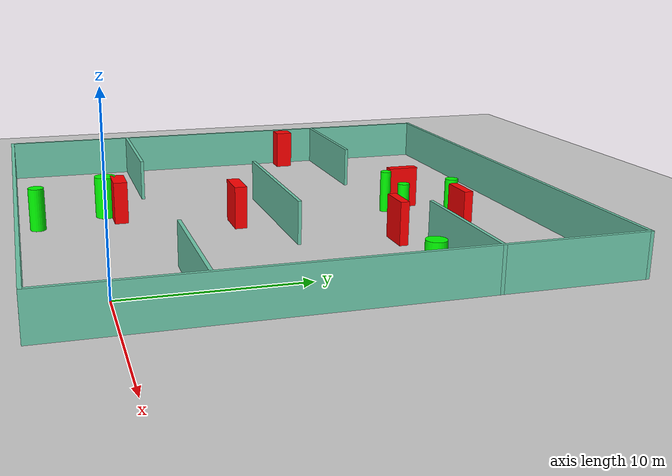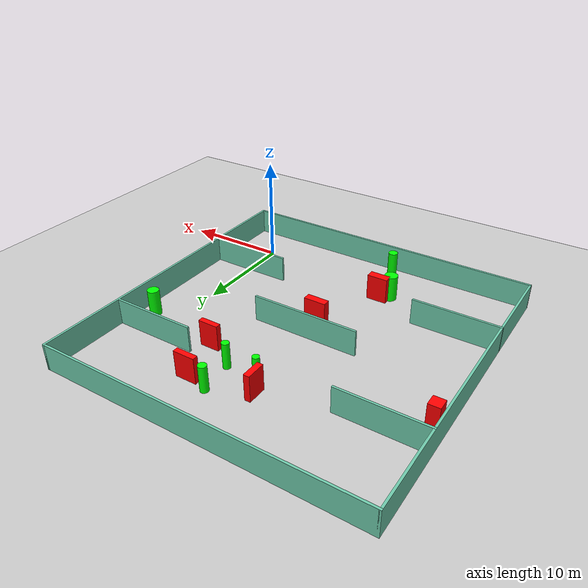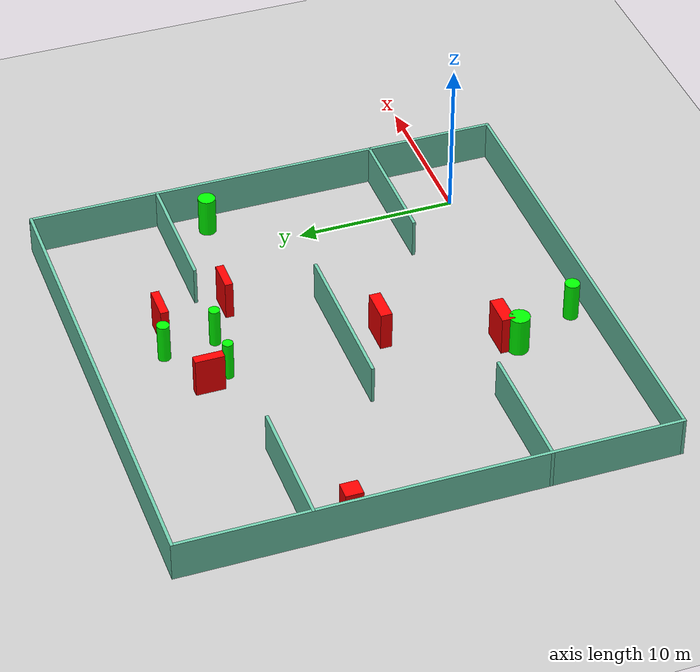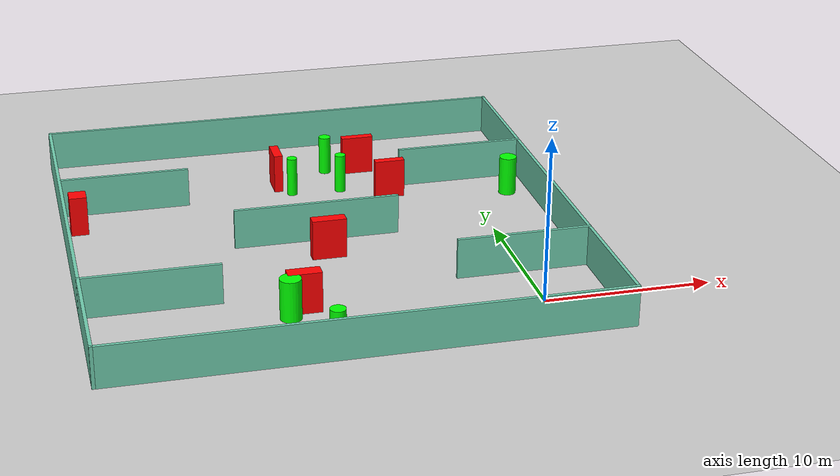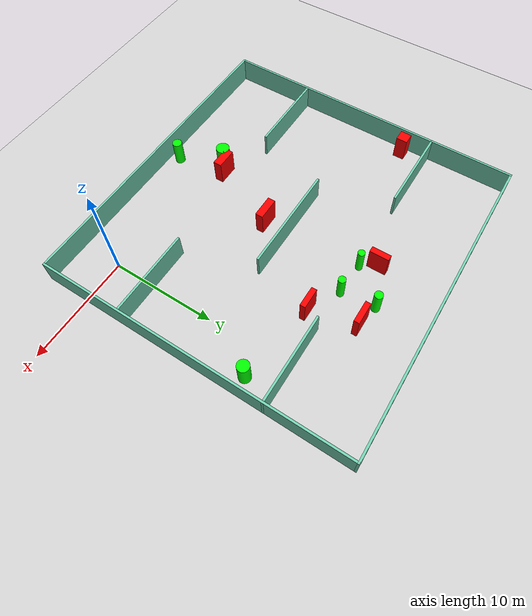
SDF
<sdf version="1.7">
 <world name="default">
  <light name="sun" type="directional">
   <pose>0 0 10 0 -0 0</pose>
   <diffuse>0.8 0.8 0.8 1</diffuse>
   <specular>0.2 0.2 0.2 1</specular>
   <attenuation>
    <range>1000</range>
    <constant>0.9</constant>
    <linear>0.01</linear>
    <quadratic>0.001</quadratic>
   </attenuation>
   <direction>-0.5 0.1 -0.9</direction>
   <spot><inner_angle>0</inner_angle><outer_angle>0</outer_angle><falloff>0</falloff></spot>
  </light>
  <model name="ground_plane">
   <static>1</static>
   <link name="link">
    <collision name="collision">
     <geometry><plane><normal>0 0 1</normal><size>100 100</size></plane></geometry>
     <surface>
      <contact><collide_bitmask>65535</collide_bitmask></contact>
      <friction><ode><mu>100</mu><mu2>50</mu2></ode></friction>
     </surface>
    </collision>
    <visual name="visual">
     <cast_shadows>0</cast_shadows>
     <geometry><plane><normal>0 0 1</normal><size>100 100</size></plane></geometry>
     <material>
      <script><uri>file://media/materials/scripts/gazebo.material</uri><name>Gazebo/Grey</name></script>
     </material>
    </visual>
   </link>
  </model>
  <gravity>0 0 -9.8</gravity>
  <magnetic_field>6e-06 2.3e-05 -4.2e-05</magnetic_field>
  <atmosphere type="adiabatic"/>
  <physics type="ode">
   <max_step_size>0.001</max_step_size>
   <real_time_factor>1</real_time_factor>
   <real_time_update_rate>1000</real_time_update_rate>
  </physics>
  <scene><ambient>0.4 0.4 0.4 1</ambient><background>0.7 0.7 0.7 1</background><shadows>1</shadows></scene>
  <spherical_coordinates>
   <surface_model>EARTH_WGS84</surface_model>
   <latitude_deg>0</latitude_deg>
   <longitude_deg>0</longitude_deg>
   <elevation>0</elevation>
   <heading_deg>0</heading_deg>
  </spherical_coordinates>
  <model name="my_base_walls">
   <link name="Wall_10">
    <collision name="Wall_10_Collision">
     <geometry><box><size>8.2 0.2 2.5</size></box></geometry>
     <pose>0 0 1.25 0 -0 0</pose>
    </collision>
    <visual name="Wall_10_Visual">
     <pose>0 0 1.25 0 -0 0</pose>
     <geometry><box><size>8.2 0.2 2.5</size></box></geometry>
     <material>
      <script><uri>file://media/materials/scripts/gazebo.material</uri><name>Gazebo/Grey</name></script>
      <ambient>0.435294 0.796078 0.67451 1</ambient>
     </material>
     <meta><layer>0</layer></meta>
    </visual>
    <pose>-11 -7 0 0 -0 0</pose>
   </link>
   <link name="Wall_12">
    <collision name="Wall_12_Collision">
     <geometry><box><size>8.2 0.2 2.5</size></box></geometry>
     <pose>0 0 1.25 0 -0 0</pose>
    </collision>
    <visual name="Wall_12_Visual">
     <pose>0 0 1.25 0 -0 0</pose>
     <geometry><box><size>8.2 0.2 2.5</size></box></geometry>
     <material>
      <script><uri>file://media/materials/scripts/gazebo.material</uri><name>Gazebo/Grey</name></script>
      <ambient>0.435294 0.796078 0.67451 1</ambient>
     </material>
     <meta><layer>0</layer></meta>
    </visual>
    <pose>-11 7 0 0 -0 0</pose>
   </link>
   <link name="Wall_14">
    <collision name="Wall_14_Collision">
     <geometry><box><size>8.2 0.2 2.5</size></box></geometry>
     <pose>0 0 1.25 0 -0 0</pose>
    </collision>
    <visual name="Wall_14_Visual">
     <pose>0 0 1.25 0 -0 0</pose>
     <geometry><box><size>8.2 0.2 2.5</size></box></geometry>
     <material>
      <script><uri>file://media/materials/scripts/gazebo.material</uri><name>Gazebo/Grey</name></script>
      <ambient>0.435294 0.796078 0.67451 1</ambient>
     </material>
     <meta><layer>0</layer></meta>
    </visual>
    <pose>11 7 0 0 -0 3.14159</pose>
   </link>
   <link name="Wall_16">
    <collision name="Wall_16_Collision">
     <geometry><box><size>10.2 0.2 2.5</size></box></geometry>
     <pose>0 0 1.25 0 -0 0</pose>
    </collision>
    <visual name="Wall_16_Visual">
     <pose>0 0 1.25 0 -0 0</pose>
     <geometry><box><size>10.2 0.2 2.5</size></box></geometry>
     <material>
      <script><uri>file://media/materials/scripts/gazebo.material</uri><name>Gazebo/Grey</name></script>
      <ambient>0.435294 0.796078 0.67451 1</ambient>
     </material>
     <meta><layer>0</layer></meta>
    </visual>
    <pose>0 0 0 0 -0 3.14159</pose>
   </link>
   <link name="Wall_2">
    <collision name="Wall_2_Collision">
     <geometry><box><size>30.2 0.2 2.5</size></box></geometry>
     <pose>0 0 1.25 0 -0 0</pose>
    </collision>
    <visual name="Wall_2_Visual">
     <pose>0 0 1.25 0 -0 0</pose>
     <geometry><box><size>30.2 0.2 2.5</size></box></geometry>
     <material>
      <script><uri>file://media/materials/scripts/gazebo.material</uri><name>Gazebo/Grey</name></script>
      <ambient>0.435294 0.796078 0.67451 1</ambient>
     </material>
     <meta><layer>0</layer></meta>
    </visual>
    <pose>0 -15 0 0 -0 3.14159</pose>
   </link>
   <link name="Wall_3">
    <collision name="Wall_3_Collision">
     <geometry><box><size>30.2 0.2 2.5</size></box></geometry>
     <pose>0 0 1.25 0 -0 0</pose>
    </collision>
    <visual name="Wall_3_Visual">
     <pose>0 0 1.25 0 -0 0</pose>
     <geometry><box><size>30.2 0.2 2.5</size></box></geometry>
     <material>
      <script><uri>file://media/materials/scripts/gazebo.material</uri><name>Gazebo/Grey</name></script>
      <ambient>0.435294 0.796078 0.67451 1</ambient>
     </material>
     <meta><layer>0</layer></meta>
    </visual>
    <pose>-15 0 0 0 -0 1.5708</pose>
   </link>
   <link name="Wall_4">
    <collision name="Wall_4_Collision">
     <geometry><box><size>30.2 0.2 2.5</size></box></geometry>
     <pose>0 0 1.25 0 -0 0</pose>
    </collision>
    <visual name="Wall_4_Visual">
     <pose>0 0 1.25 0 -0 0</pose>
     <geometry><box><size>30.2 0.2 2.5</size></box></geometry>
     <material>
      <script><uri>file://media/materials/scripts/gazebo.material</uri><name>Gazebo/Grey</name></script>
      <ambient>0.435294 0.796078 0.67451 1</ambient>
     </material>
     <meta><layer>0</layer></meta>
    </visual>
    <pose>0 15 0 0 -0 0</pose>
   </link>
   <link name="Wall_6">
    <collision name="Wall_6_Collision">
     <geometry><box><size>30.2 0.2 2.5</size></box></geometry>
     <pose>0 0 1.25 0 -0 0</pose>
    </collision>
    <visual name="Wall_6_Visual">
     <pose>0 0 1.25 0 -0 0</pose>
     <geometry><box><size>30.2 0.2 2.5</size></box></geometry>
     <material>
      <script><uri>file://media/materials/scripts/gazebo.material</uri><name>Gazebo/Grey</name></script>
      <ambient>0.435294 0.796078 0.67451 1</ambient>
     </material>
     <meta><layer>0</layer></meta>
    </visual>
    <pose>15 0 0 0 -0 1.5708</pose>
   </link>
   <link name="Wall_8">
    <collision name="Wall_8_Collision">
     <geometry><box><size>8.2 0.2 2.5</size></box></geometry>
     <pose>0 0 1.25 0 -0 0</pose>
    </collision>
    <visual name="Wall_8_Visual">
     <pose>0 0 1.25 0 -0 0</pose>
     <geometry><box><size>8.2 0.2 2.5</size></box></geometry>
     <material>
      <script><uri>file://media/materials/scripts/gazebo.material</uri><name>Gazebo/Grey</name></script>
      <ambient>0.435294 0.796078 0.67451 1</ambient>
     </material>
     <meta><layer>0</layer></meta>
    </visual>
    <pose>11 -7 0 0 -0 3.14159</pose>
   </link>
   <static>1</static>
   <pose>-11 11 0 0 -0 0</pose>
  </model>
  <model name="cylinder1">
   <static>1</static>
   <link name="link">
    <inertial>
     <mass>1</mass>
     <inertia><ixx>0.5</ixx><ixy>0</ixy><ixz>0</ixz><iyy>0.5</iyy><iyz>0</iyz><izz>1</izz></inertia>
    </inertial>
    <collision name="collision">
     <geometry><cylinder><radius>0.548670943746616</radius><length>2.5</length></cylinder></geometry>
    </collision>
    <visual name="visual">
     <geometry><cylinder><radius>0.548670943746616</radius><length>2.5</length></cylinder></geometry>
     <material>
      <ambient>0 1 0 1</ambient>
      <diffuse>0 1 0 1</diffuse>
      <specular>0.1 0.1 0.1 1</specular>
      <emissive>0 0 0 0</emissive>
     </material>
    </visual>
   </link>
   <pose>2.482613313827681 15.238384204195306 1.25 0 0 0</pose>
  </model>
  <model name="cylinder2">
   <static>1</static>
   <link name="link">
    <inertial>
     <mass>1</mass>
     <inertia><ixx>0.5</ixx><ixy>0</ixy><ixz>0</ixz><iyy>0.5</iyy><iyz>0</iyz><izz>1</izz></inertia>
    </inertial>
    <collision name="collision">
     <geometry><cylinder><radius>0.3451538124476172</radius><length>2.5</length></cylinder></geometry>
    </collision>
    <visual name="visual">
     <geometry><cylinder><radius>0.3451538124476172</radius><length>2.5</length></cylinder></geometry>
     <material>
      <ambient>0 1 0 1</ambient>
      <diffuse>0 1 0 1</diffuse>
      <specular>0.1 0.1 0.1 1</specular>
      <emissive>0 0 0 0</emissive>
     </material>
    </visual>
   </link>
   <pose>-8.01430037297963 18.016882521643193 1.25 0 0 0</pose>
  </model>
  <model name="cylinder3">
   <static>1</static>
   <link name="link">
    <inertial>
     <mass>1</mass>
     <inertia><ixx>0.5</ixx><ixy>0</ixy><ixz>0</ixz><iyy>0.5</iyy><iyz>0</iyz><izz>1</izz></inertia>
    </inertial>
    <collision name="collision">
     <geometry><cylinder><radius>0.4573864990726964</radius><length>2.5</length></cylinder></geometry>
    </collision>
    <visual name="visual">
     <geometry><cylinder><radius>0.4573864990726964</radius><length>2.5</length></cylinder></geometry>
     <material>
      <ambient>0 1 0 1</ambient>
      <diffuse>0 1 0 1</diffuse>
      <specular>0.1 0.1 0.1 1</specular>
      <emissive>0 0 0 0</emissive>
     </material>
    </visual>
   </link>
   <pose>-12.697377772251864 -2.8412978190490077 1.25 0 0 0</pose>
  </model>
  <model name="cylinder4">
   <static>1</static>
   <link name="link">
    <inertial>
     <mass>1</mass>
     <inertia><ixx>0.5</ixx><ixy>0</ixy><ixz>0</ixz><iyy>0.5</iyy><iyz>0</iyz><izz>1</izz></inertia>
    </inertial>
    <collision name="collision">
     <geometry><cylinder><radius>0.6360853104852722</radius><length>2.5</length></cylinder></geometry>
    </collision>
    <visual name="visual">
     <geometry><cylinder><radius>0.6360853104852722</radius><length>2.5</length></cylinder></geometry>
     <material>
      <ambient>0 1 0 1</ambient>
      <diffuse>0 1 0 1</diffuse>
      <specular>0.1 0.1 0.1 1</specular>
      <emissive>0 0 0 0</emissive>
     </material>
    </visual>
   </link>
   <pose>-14.504750423743626 1.2751320000024116 1.25 0 0 0</pose>
  </model>
  <model name="cylinder5">
   <static>1</static>
   <link name="link">
    <inertial>
     <mass>1</mass>
     <inertia><ixx>0.5</ixx><ixy>0</ixy><ixz>0</ixz><iyy>0.5</iyy><iyz>0</iyz><izz>1</izz></inertia>
    </inertial>
    <collision name="collision">
     <geometry><cylinder><radius>0.3856409828705382</radius><length>2.5</length></cylinder></geometry>
    </collision>
    <visual name="visual">
     <geometry><cylinder><radius>0.3856409828705382</radius><length>2.5</length></cylinder></geometry>
     <material>
      <ambient>0 1 0 1</ambient>
      <diffuse>0 1 0 1</diffuse>
      <specular>0.1 0.1 0.1 1</specular>
      <emissive>0 0 0 0</emissive>
     </material>
    </visual>
   </link>
   <pose>-8.351290759447286 21.253304240460047 1.25 0 0 0</pose>
  </model>
  <model name="cylinder6">
   <static>1</static>
   <link name="link">
    <inertial>
     <mass>1</mass>
     <inertia><ixx>0.5</ixx><ixy>0</ixy><ixz>0</ixz><iyy>0.5</iyy><iyz>0</iyz><izz>1</izz></inertia>
    </inertial>
    <collision name="collision">
     <geometry><cylinder><radius>0.3239815498760957</radius><length>2.5</length></cylinder></geometry>
    </collision>
    <visual name="visual">
     <geometry><cylinder><radius>0.3239815498760957</radius><length>2.5</length></cylinder></geometry>
     <material>
      <ambient>0 1 0 1</ambient>
      <diffuse>0 1 0 1</diffuse>
      <specular>0.1 0.1 0.1 1</specular>
      <emissive>0 0 0 0</emissive>
     </material>
    </visual>
   </link>
   <pose>-11.14893596286647 18.166677195523476 1.25 0 0 0</pose>
  </model>
  <model name="box1">
   <static>1</static>
   <link name="link">
    <inertial>
     <mass>1</mass>
     <inertia><ixx>0.083</ixx><ixy>0</ixy><ixz>0</ixz><iyy>0.083</iyy><iyz>0</iyz><izz>0.083</izz></inertia>
    </inertial>
    <collision name="collision">
     <geometry><box><size>1.896083167551244 0.5068434891814582 2.5</size></box></geometry>
    </collision>
    <visual name="visual">
     <geometry><box><size>1.896083167551244 0.5068434891814582 2.5</size></box></geometry>
     <material>
      <ambient>1 0 0 1</ambient>
      <diffuse>1 0 0 1</diffuse>
      <specular>0.1 0.1 0.1 1</specular>
      <emissive>0 0 0 0</emissive>
     </material>
    </visual>
    <sensor name="my_contact" type="contact">
     <contact><collision>box_collision</collision><topic>__default_topic__</topic></contact>
    </sensor>
   </link>
   <pose>-5.116783961092828 16.484326272948458 1.25 0 0 0</pose>
  </model>
  <model name="box2">
   <static>1</static>
   <link name="link">
    <inertial>
     <mass>1</mass>
     <inertia><ixx>0.083</ixx><ixy>0</ixy><ixz>0</ixz><iyy>0.083</iyy><iyz>0</iyz><izz>0.083</izz></inertia>
    </inertial>
    <collision name="collision">
     <geometry><box><size>2.0553676070988853 0.5128146990914242 2.5</size></box></geometry>
    </collision>
    <visual name="visual">
     <geometry><box><size>2.0553676070988853 0.5128146990914242 2.5</size></box></geometry>
     <material>
      <ambient>1 0 0 1</ambient>
      <diffuse>1 0 0 1</diffuse>
      <specular>0.1 0.1 0.1 1</specular>
      <emissive>0 0 0 0</emissive>
     </material>
    </visual>
    <sensor name="my_contact" type="contact">
     <contact><collision>box_collision</collision><topic>__default_topic__</topic></contact>
    </sensor>
   </link>
   <pose>-6.274655849545319 20.837223006543798 1.25 0 0 0</pose>
  </model>
  <model name="box3">
   <static>1</static>
   <link name="link">
    <inertial>
     <mass>1</mass>
     <inertia><ixx>0.083</ixx><ixy>0</ixy><ixz>0</ixz><iyy>0.083</iyy><iyz>0</iyz><izz>0.083</izz></inertia>
    </inertial>
    <collision name="collision">
     <geometry><box><size>1.9741577623235549 0.811866698548477 2.5</size></box></geometry>
    </collision>
    <visual name="visual">
     <geometry><box><size>1.9741577623235549 0.811866698548477 2.5</size></box></geometry>
     <material>
      <ambient>1 0 0 1</ambient>
      <diffuse>1 0 0 1</diffuse>
      <specular>0.1 0.1 0.1 1</specular>
      <emissive>0 0 0 0</emissive>
     </material>
    </visual>
    <sensor name="my_contact" type="contact">
     <contact><collision>box_collision</collision><topic>__default_topic__</topic></contact>
    </sensor>
   </link>
   <pose>-13.593285968573502 1.9951302114026097 1.25 0 0 0</pose>
  </model>
  <model name="box4">
   <static>1</static>
   <link name="link">
    <inertial>
     <mass>1</mass>
     <inertia><ixx>0.083</ixx><ixy>0</ixy><ixz>0</ixz><iyy>0.083</iyy><iyz>0</iyz><izz>0.083</izz></inertia>
    </inertial>
    <collision name="collision">
     <geometry><box><size>0.5587626583124244 1.8097130804680464 2.5</size></box></geometry>
    </collision>
    <visual name="visual">
     <geometry><box><size>0.5587626583124244 1.8097130804680464 2.5</size></box></geometry>
     <material>
      <ambient>1 0 0 1</ambient>
      <diffuse>1 0 0 1</diffuse>
      <specular>0.1 0.1 0.1 1</specular>
      <emissive>0 0 0 0</emissive>
     </material>
    </visual>
    <sensor name="my_contact" type="contact">
     <contact><collision>box_collision</collision><topic>__default_topic__</topic></contact>
    </sensor>
   </link>
   <pose>-11.940186954477252 19.56793318118406 1.25 0 0 0</pose>
  </model>
  <model name="box5">
   <static>1</static>
   <link name="link">
    <inertial>
     <mass>1</mass>
     <inertia><ixx>0.083</ixx><ixy>0</ixy><ixz>0</ixz><iyy>0.083</iyy><iyz>0</iyz><izz>0.083</izz></inertia>
    </inertial>
    <collision name="collision">
     <geometry><box><size>1.0646731169754828 1.073469657674411 2.5</size></box></geometry>
    </collision>
    <visual name="visual">
     <geometry><box><size>1.0646731169754828 1.073469657674411 2.5</size></box></geometry>
     <material>
      <ambient>1 0 0 1</ambient>
      <diffuse>1 0 0 1</diffuse>
      <specular>0.1 0.1 0.1 1</specular>
      <emissive>0 0 0 0</emissive>
     </material>
    </visual>
    <sensor name="my_contact" type="contact">
     <contact><collision>box_collision</collision><topic>__default_topic__</topic></contact>
    </sensor>
   </link>
   <pose>-25.07860566910173 15.475424455726625 1.25 0 0 0</pose>
  </model>
  <model name="box6">
   <static>1</static>
   <link name="link">
    <inertial>
     <mass>1</mass>
     <inertia><ixx>0.083</ixx><ixy>0</ixy><ixz>0</ixz><iyy>0.083</iyy><iyz>0</iyz><izz>0.083</izz></inertia>
    </inertial>
    <collision name="collision">
     <geometry><box><size>2.0929219276779314 0.7224878758392107 2.5</size></box></geometry>
    </collision>
    <visual name="visual">
     <geometry><box><size>2.0929219276779314 0.7224878758392107 2.5</size></box></geometry>
     <material>
      <ambient>1 0 0 1</ambient>
      <diffuse>1 0 0 1</diffuse>
      <specular>0.1 0.1 0.1 1</specular>
      <emissive>0 0 0 0</emissive>
     </material>
    </visual>
    <sensor name="my_contact" type="contact">
     <contact><collision>box_collision</collision><topic>__default_topic__</topic></contact>
    </sensor>
   </link>
   <pose>-10.784622648926828 8.60928879644821 1.25 0 0 0</pose>
  </model>
 </world>
</sdf>
